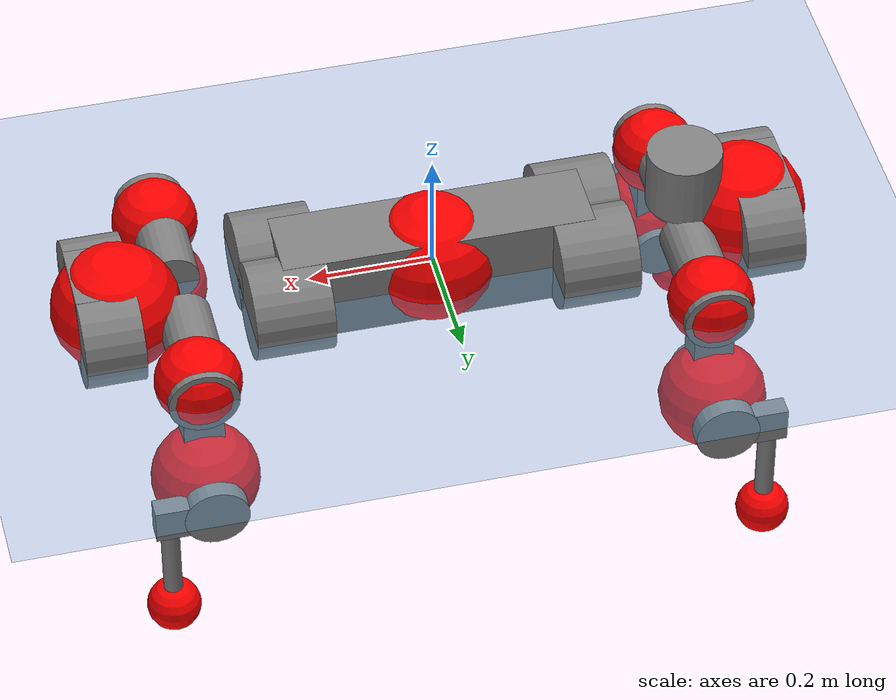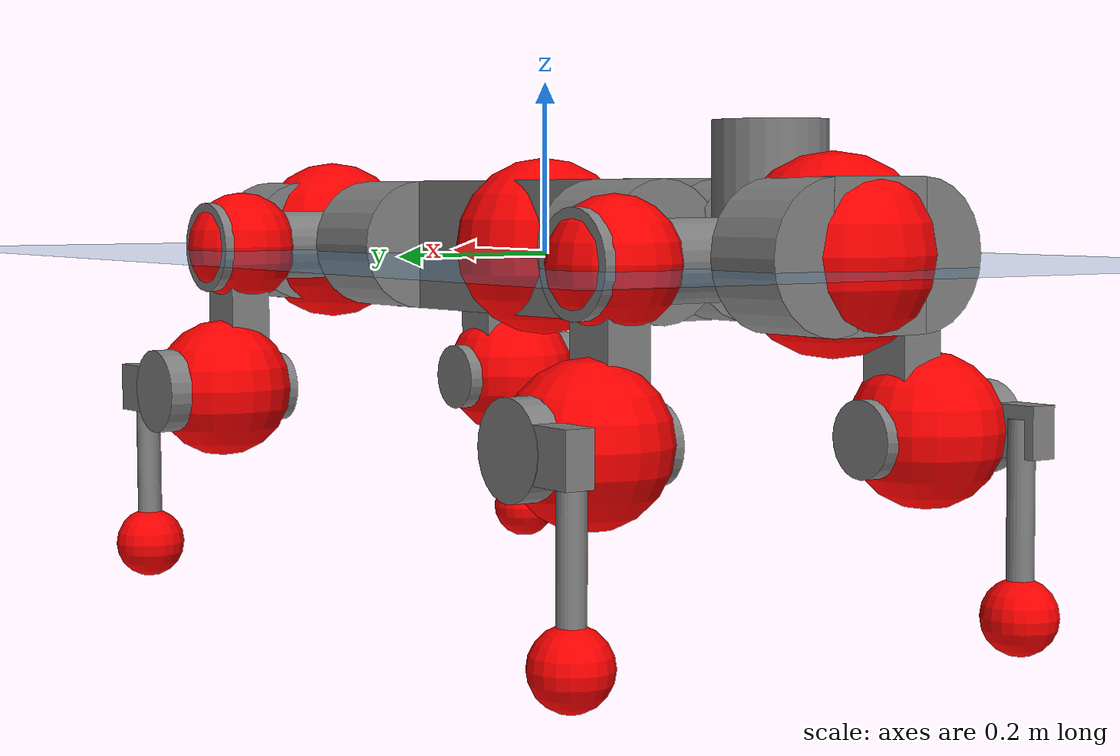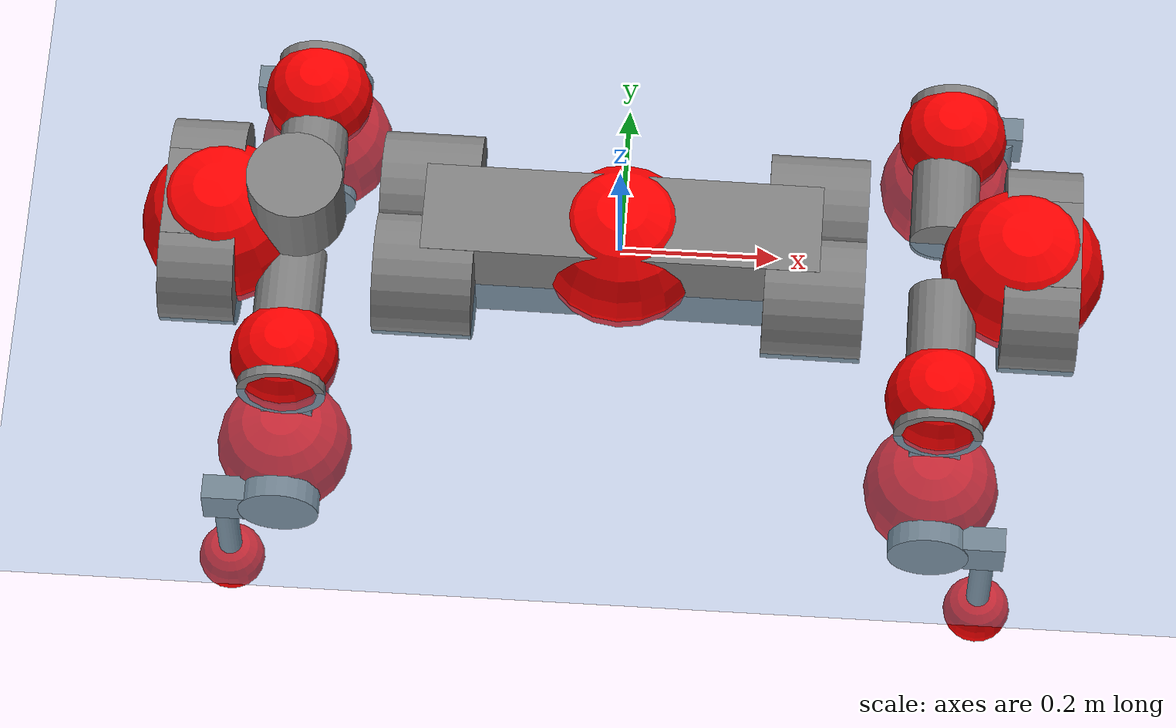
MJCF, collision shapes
<mujoco model="anymal_c">
  <compiler angle="radian" assetdir="assets" balanceinertia="true" inertiafromgeom="false"/>

  <option timestep="0.005" density="1.2" viscosity="2e-05"/>

  <size nkey="1"/>

  <visual>
    <quality shadowsize="8192"/>
    <map shadowclip="0.5"/>
  </visual>

  <default>
    <default class="/">
      <material specular="0" shininess="0.25"/>
      <geom contype="0" conaffinity="0" group="1" solref="-1000 -80"/>
      <site size="0.01 0.005 0.005" group="5"/>
      <general forcelimited="true" forcerange="-80 80" biastype="affine" gainprm="80" biasprm="0 -80 -2"/>
      <default class="anymal_c">
        <joint armature="0.01" damping="0.01" frictionloss="0.1"/>
        <default class="visual">
          <geom type="mesh" group="2"/>
          <default class="visual_zflip"/>
        </default>
        <default class="collision">
          <geom type="cylinder" group="3"/>
          <default class="foot">
            <geom size="0.03 0 0" type="sphere" condim="6" priority="1" friction="0.8 0.02 0.01" solimp="0.015 1 0.03"/>
          </default>
        </default>
      </default>
      <default class="reward_collision_sphere">
        <geom group="5" rgba="1 0 0 1"/>
      </default>
    </default>
  </default>

  <asset>
    <texture type="skybox" colorspace="auto" name="//unnamed_texture_0" builtin="gradient" rgb1="0.95 0.95 0.95" rgb2="0.95 0.95 0.95" width="100" height="600"/>
    <texture type="2d" colorspace="auto" name="texplane" builtin="checker" rgb1="0.345 0.575 0.748" rgb2="0.345 0.575 0.748" markrgb="1 1 1" width="512" height="512"/>
    <texture type="2d" colorspace="linear" name="base" file="base.png"/>
    <texture type="2d" colorspace="linear" name="top_shell" file="top_shell.png"/>
    <texture type="2d" colorspace="linear" name="bottom_shell" file="bottom_shell.png"/>
    <texture type="2d" colorspace="linear" name="remote" file="remote.png"/>
    <texture type="2d" colorspace="linear" name="hatch" file="hatch.png"/>
    <texture type="2d" colorspace="linear" name="handle" file="handle.png"/>
    <texture type="2d" colorspace="linear" name="face" file="face.png"/>
    <texture type="2d" colorspace="linear" name="battery" file="battery.png"/>
    <texture type="2d" colorspace="linear" name="lidar_cage" file="lidar_cage.png"/>
    <texture type="2d" colorspace="linear" name="depth_camera" file="depth_camera.png"/>
    <texture type="2d" colorspace="linear" name="wide_angle_camera" file="wide_angle_camera.png"/>
    <texture type="2d" colorspace="linear" name="lidar" file="lidar.png"/>
    <texture type="2d" colorspace="linear" name="drive" file="drive.png"/>
    <texture type="2d" colorspace="linear" name="hip_l" file="hip_l.png"/>
    <texture type="2d" colorspace="linear" name="shank_l" file="shank_l.png"/>
    <texture type="2d" colorspace="linear" name="foot" file="foot.png"/>
    <texture type="2d" colorspace="linear" name="thigh" file="thigh.png"/>
    <texture type="2d" colorspace="linear" name="shank_r" file="shank_r.png"/>
    <texture type="2d" colorspace="linear" name="hip_r" file="hip_r.png"/>
    <material name="MatPlane" class="/" texture="texplane" texuniform="true" texrepeat="2 2" specular="0.9" shininess="0.5"/>
    <material name="black_plastic" class="/" rgba="0.007 0.007 0.007 1"/>
    <material name="green" class="/" rgba="0.052 0.178 0.033 1"/>
    <material name="red" class="/" rgba="0.178 0.006 0.005 1"/>
    <material name="yellow" class="/" rgba="0.178 0.119 0.006 1"/>
    <material name="lwl" class="/" rgba="0.8 0.8 0.8 1"/>
    <material name="base" class="/" texture="base"/>
    <material name="top_shell" class="/" texture="top_shell"/>
    <material name="bottom_shell" class="/" texture="bottom_shell"/>
    <material name="hip_l" class="/" texture="hip_l"/>
    <material name="thigh" class="/" texture="thigh"/>
    <material name="shank_l" class="/" texture="shank_l"/>
    <material name="foot" class="/" texture="foot"/>
    <material name="hip_r" class="/" texture="hip_r"/>
    <material name="shank" class="/" texture="shank_r"/>
    <material name="hatch" class="/" texture="hatch"/>
    <material name="remote" class="/" texture="remote"/>
    <material name="handle" class="/" texture="handle"/>
    <material name="face" class="/" texture="face"/>
    <material name="depth_camera" class="/" texture="depth_camera"/>
    <material name="wide_angle_camera" class="/" texture="wide_angle_camera"/>
    <material name="battery" class="/" texture="battery"/>
    <material name="lidar_cage" class="/" texture="lidar_cage"/>
    <material name="lidar" class="/" texture="lidar"/>
    <material name="drive" class="/" texture="drive"/>
    <mesh name="base_0" class="/" file="base_0.obj"/>
    <mesh name="base_1" class="/" file="base_1.obj"/>
    <mesh name="base_2" class="/" file="base_2.obj"/>
    <mesh name="base_3" class="/" file="base_3.obj"/>
    <mesh name="base_4" class="/" file="base_4.obj"/>
    <mesh name="base_5" class="/" file="base_5.obj"/>
    <mesh name="top_shell" class="/" file="top_shell.obj"/>
    <mesh name="bottom_shell" class="/" file="bottom_shell.obj"/>
    <mesh name="remote" class="/" file="remote.obj"/>
    <mesh name="handle" class="/" file="handle.obj"/>
    <mesh name="face" class="/" file="face.obj"/>
    <mesh name="wide_angle_camera" class="/" file="wide_angle_camera.obj"/>
    <mesh name="depth_camera" class="/" file="depth_camera.obj"/>
    <mesh name="battery" class="/" file="battery.obj"/>
    <mesh name="lidar_cage" class="/" file="lidar_cage.obj"/>
    <mesh name="lidar" class="/" file="lidar.obj"/>
    <mesh name="drive" class="/" file="drive.obj"/>
    <mesh name="hip_l" class="/" file="hip_l.obj"/>
    <mesh name="thigh" class="/" file="thigh.obj"/>
    <mesh name="shank_l" class="/" file="shank_l.obj"/>
    <mesh name="foot" class="/" file="foot.obj"/>
    <mesh name="hip_r" class="/" file="hip_r.obj"/>
    <mesh name="hatch" class="/" file="hatch.obj"/>
    <mesh name="shank_r" class="/" file="shank_r.obj"/>
  </asset>

  <worldbody>
    <geom name="floor" class="/" size="100 100 0.125" type="plane" group="0" material="MatPlane"/>
    <light name="toplight_shadow" class="/" pos="0 0 5" dir="0.0990148 0.0990148 -0.990148" type="directional" ambient="0.04 0.04 0.04" diffuse="0.55 0.55 0.55" specular="0.12 0.12 0.12"/>
    <light name="toplight_fill" class="/" pos="0 0 5" dir="0.0990148 0.0990148 -0.990148" type="directional" castshadow="false" ambient="0.04 0.04 0.04" diffuse="0.3 0.3 0.3" specular="0.08 0.08 0.08"/>
    <body name="trunk" childclass="anymal_c" pos="0.00182921 0.000590217 0.00891486" quat="0.999992 -0.00159725 0.00237832 -0.00273208">
      <inertial pos="0.0043104 -0.00619431 0.0277289" quat="0.51751 0.467987 0.508517 0.504561" mass="11.5242" diaginertia="0.994061 0.20706 0.020632"/>
      <joint name="//unnamed_joint_0" type="free" armature="0" damping="0" frictionloss="0"/>
      <geom name="//unnamed_geom_1" class="visual" material="green" mesh="base_0"/>
      <geom name="//unnamed_geom_2" class="visual" material="yellow" mesh="base_1"/>
      <geom name="//unnamed_geom_3" class="visual" material="red" mesh="base_2"/>
      <geom name="//unnamed_geom_4" class="visual" material="black_plastic" mesh="base_3"/>
      <geom name="//unnamed_geom_5" class="visual" material="lwl" mesh="base_4"/>
      <geom name="//unnamed_geom_6" class="visual" material="base" mesh="base_5"/>
      <geom name="trunk_1" class="collision" size="0.250269 0.0604097 0.0776696" type="box"/>
      <geom name="trunk_2" class="collision" size="0.0776696 0.0625672" pos="0.244947 0.0577644 0" quat="0.707107 0 0.707107 0"/>
      <geom name="trunk_3" class="collision" size="0.0776696 0.0625672" pos="-0.244947 0.0577644 0" quat="0.707107 0 0.707107 0"/>
      <geom name="trunk_4" class="collision" size="0.0776696 0.0625672" pos="0.244947 -0.0577644 0" quat="0.707107 0 0.707107 0"/>
      <geom name="trunk_5" class="collision" size="0.0776696 0.0625672" pos="-0.244947 -0.0577644 0" quat="0.707107 0 0.707107 0"/>
      <geom name="//unnamed_geom_12" class="visual" material="top_shell" mesh="top_shell"/>
      <geom name="//unnamed_geom_13" class="visual" material="bottom_shell" mesh="bottom_shell"/>
      <geom name="//unnamed_geom_14" class="visual" material="remote" mesh="remote"/>
      <geom name="//unnamed_geom_15" class="visual" material="handle" mesh="handle"/>
      <geom name="//unnamed_geom_16" class="visual" pos="0.466808 0 0" quat="1 0 0 0" material="face" mesh="face"/>
      <geom name="trunk_6" class="collision" size="0.0474647 0.0604097 0.0776696" pos="0.528749 0 0" type="box"/>
      <geom name="//unnamed_geom_18" class="collision" size="0.0776696 0.0474647" pos="0.528749 0.0577644 0" quat="0.707107 0 0.707107 0"/>
      <geom name="//unnamed_geom_19" class="collision" size="0.0776696 0.0474647" pos="0.528749 -0.0577644 0" quat="0.707107 0 0.707107 0"/>
      <geom name="//unnamed_geom_20" class="visual" pos="0.519888 0 -0.014904" quat="0.965926 0 0.258819 0" material="depth_camera" mesh="depth_camera"/>
      <geom name="//unnamed_geom_21" class="visual" pos="0.577738 0 0.00954465" material="wide_angle_camera" mesh="wide_angle_camera"/>
      <geom name="//unnamed_geom_22" class="visual_zflip" pos="-0.466808 0 0" quat="0 0 0 1" material="face" mesh="face"/>
      <geom name="trunk_7" class="collision" size="0.0474647 0.0604097 0.0776696" pos="-0.528749 0 0" quat="0 0 0 1" type="box"/>
      <geom name="//unnamed_geom_24" class="collision" size="0.0776696 0.0474647" pos="-0.528749 -0.0577644 0" quat="0 -0.707107 0 0.707107"/>
      <geom name="//unnamed_geom_25" class="collision" size="0.0776696 0.0474647" pos="-0.528749 0.0577644 0" quat="0 -0.707107 0 0.707107"/>
      <geom name="//unnamed_geom_26" class="visual" pos="-0.519888 0 -0.014904" quat="0 -0.258819 0 0.965926" material="depth_camera" mesh="depth_camera"/>
      <geom name="//unnamed_geom_27" class="visual_zflip" pos="-0.577738 0 0.00954465" quat="0 0 0 1" material="wide_angle_camera" mesh="wide_angle_camera"/>
      <geom name="//unnamed_geom_28" class="visual" material="battery" mesh="battery"/>
      <geom name="//unnamed_geom_29" class="visual" pos="0 0.0591253 0.0222353" quat="0.683013 -0.183013 0.183013 0.683013" material="depth_camera" mesh="depth_camera"/>
      <geom name="//unnamed_geom_30" class="visual" pos="0 -0.0591253 0.0222353" quat="0.683013 0.183013 0.183013 -0.683013" material="depth_camera" mesh="depth_camera"/>
      <geom name="//unnamed_geom_31" class="visual" pos="-0.409935 0 0.0468625" quat="1 0 0 0" material="lidar_cage" mesh="lidar_cage"/>
      <geom name="trunk_8" class="collision" size="0.0604097 0.0517797" pos="-0.409935 0 0.0851176"/>
      <geom name="//unnamed_geom_33" class="visual" pos="-0.409935 -0.000118251 0.0906646" quat="0.707107 0 0 -0.707107" material="lidar" mesh="lidar"/>
      <geom name="//unnamed_geom_34" class="visual" pos="0.337746 0.0857547 3.23647e-09" quat="0.258819 0.965926 0 0" material="drive" mesh="drive"/>
      <geom name="//unnamed_geom_35" class="visual" pos="0.337746 -0.0857547 -3.23647e-09" quat="0.258819 -0.965926 0 0" material="drive" mesh="drive"/>
      <geom name="//unnamed_geom_36" class="visual" pos="-0.337746 0.0857547 -3.23647e-09" quat="0 0 0.965926 -0.258819" material="drive" mesh="drive"/>
      <geom name="//unnamed_geom_37" class="visual" pos="-0.337746 -0.0857547 3.23647e-09" quat="0 0 -0.965926 -0.258819" material="drive" mesh="drive"/>
      <geom name="//unnamed_geom_38" class="visual" pos="0.130639 0 0.0465437" quat="1 0 0 0" material="hatch" mesh="hatch"/>
      <geom name="//unnamed_geom_39" class="reward_collision_sphere" size="0.103559"/>
      <geom name="//unnamed_geom_40" class="reward_collision_sphere" size="0.103559" pos="0.506788 0 0"/>
      <geom name="//unnamed_geom_41" class="reward_collision_sphere" size="0.103559" pos="-0.506788 0 0"/>
      <site name="imu" pos="0.286457 -0.00906357 0.0573849" size="0.00862995"/>
      <camera name="track" pos="0 -1.65041 0" quat="0.707107 0.707107 0 0" mode="trackcom"/>
      <camera name="ego_camera" pos="0.506788 0 -0.0255034" quat="-0.5 -0.5 0.5 0.5"/>
      <body name="LF_HIP" pos="0.339024 0.0857676 -0.00217829" quat="0.258547 0.965998 0.000538526 -6.88571e-05">
        <inertial pos="0.0712078 -0.0113384 0.0032226" quat="-0.134744 0.678652 -0.14038 0.708215" mass="1.86924" diaginertia="0.010327 0.00194928 0.000360872"/>
        <joint name="LF_HAA" pos="0 0 0" axis="0.999424 0.0158213 -0.0300384" stiffness="0.0226128" range="-0.743706 0.43697" armature="0.0085171" damping="0.0320789" frictionloss="0.0751772"/>
        <geom name="//unnamed_geom_42" class="visual" pos="0 0.000190387 -3.12709e-05" quat="0.258819 -0.965926 0 0" material="hip_l" mesh="hip_l"/>
        <geom name="//unnamed_geom_43" class="visual" pos="0.0674591 -0.0777114 -0.043479" quat="0.183013 -0.683013 0.683013 0.183013" material="drive" mesh="drive"/>
        <geom name="//unnamed_geom_44" class="collision" size="0.0431498 0.0604097" pos="0.0674591 -0.00986929 -0.00440253" quat="-0.353553 -0.612372 0.612372 -0.353553"/>
        <body name="LF_THIGH" pos="0.0733969 -0.0627332 -0.0338176" quat="0.183114 -0.683336 0.682855 0.182291">
          <inertial pos="0.0352286 0.0013869 -0.158494" quat="0.993164 -0.00488308 -0.0801351 0.0847287" mass="2.16427" diaginertia="0.060306 0.0124632 0.000514104"/>
          <joint name="LF_HFE" pos="0 0 0" axis="0.999991 0.000677057 -0.00422474" stiffness="0.00917651" range="-3.08412 3.14385" armature="0.0104939" damping="0" frictionloss="0.0853618"/>
          <geom name="//unnamed_geom_45" class="visual" pos="0.00598851 9.43649e-06 0" quat="0.707107 0 0 -0.707107" material="thigh" mesh="thigh"/>
          <geom name="//unnamed_geom_46" class="collision" size="0.0560947 0.0345198" pos="0.0450478 0 0" quat="0.5 0.5 -0.5 -0.5"/>
          <geom name="//unnamed_geom_47" class="collision" size="0.0323623 0.0258899 0.121953" pos="0.0337859 0 -0.0900997" quat="0.707107 0 0 -0.707107" type="box"/>
          <geom name="//unnamed_geom_48" class="visual" pos="0.112957 0 -0.181712" quat="1 0 0 0" material="drive" mesh="drive"/>
          <geom name="//unnamed_geom_49" class="collision" size="0.0431498 0.0604097" pos="0.0341237 0 -0.181712" quat="0.707107 0 0.707107 0"/>
          <geom name="//unnamed_geom_50" class="reward_collision_sphere" size="0.0690396" pos="0.0281549 0 0"/>
          <body name="LF_SHANK" pos="0.113899 -0.00131871 -0.179242" quat="1 -6.92227e-05 -4.72098e-05 0.000122872">
            <inertial pos="0.0162093 -0.0422961 -0.0516516" quat="0.992296 -0.119036 -0.00444145 -0.0340417" mass="0.373761" diaginertia="0.0197102 0.00353914 0.000114228"/>
            <joint name="LF_KFE" pos="0 0 0" axis="0.999972 0.00709602 -0.00217153" range="-2.94401 3.07628" armature="0.00868209" damping="0.00585177" frictionloss="0.0461509"/>
            <geom name="//unnamed_geom_51" class="visual" pos="0.00195272 0.010412 0" quat="0.707107 0 0 -0.707107" material="shank_l" mesh="shank_l"/>
            <geom name="LF_kfe_act" class="collision" size="0.0517797 0.0172599" pos="0.0225239 0 0" quat="0.5 0.5 -0.5 -0.5"/>
            <geom name="//unnamed_geom_53" class="collision" size="0.0496214 0.0291261 0.0163969" pos="0.0225239 -0.0474485 0" quat="0.5 0.5 -0.5 -0.5" type="box"/>
            <geom name="//unnamed_geom_54" class="visual" pos="0.0146964 -0.0692215 -0.215485" quat="0.382683 0 0 -0.92388" material="foot" mesh="foot"/>
            <geom name="LF_calf" class="collision" size="0.0151024 0.1219" pos="0.0146968 -0.0725768 -0.107742" quat="0.707107 0 0 -0.707107"/>
            <geom name="LF_foot" class="foot" size="0.0313291" pos="0.0146968 -0.0725768 -0.201139" quat="0.707107 0 0 -0.707107"/>
            <geom name="//unnamed_geom_57" class="reward_collision_sphere" size="0.0862995" pos="-0.0563098 0 0"/>
            <geom name="//unnamed_geom_58" class="reward_collision_sphere" size="0.0431498" pos="0.0146968 -0.0725768 -0.201139"/>
            <site name="LF_foot" class="foot" pos="0.0146968 -0.0725768 -0.201139" quat="0.707107 0 0 -0.707107" size="0.00862995"/>
          </body>
        </body>
      </body>
      <body name="RF_HIP" pos="0.34075 -0.0890484 -6.29435e-05" quat="0.256608 -0.966507 -9.71021e-06 -0.00408846">
        <inertial pos="0.0649558 0.0133615 -0.00554673" quat="0.158262 0.686702 0.0898088 0.703795" mass="1.58475" diaginertia="0.0108096 0.00184797 0.000354511"/>
        <joint name="RF_HAA" pos="0 0 0" axis="0.9999 -0.0126345 0.00636381" stiffness="0.0296418" range="-0.314374 0.773039" armature="0.00885984" damping="0.0269722" frictionloss="0.0693962"/>
        <geom name="//unnamed_geom_59" class="visual" pos="0 -0.000190386 -3.12708e-05" quat="0.258819 0.965926 0 0" material="hip_r" mesh="hip_r"/>
        <geom name="//unnamed_geom_60" class="visual" pos="0.0674591 0.0777114 -0.043479" quat="0.183013 0.683013 0.683013 -0.183013" material="drive" mesh="drive"/>
        <geom name="//unnamed_geom_61" class="collision" size="0.0431498 0.0604097" pos="0.0674591 0.00986929 -0.00440253" quat="-0.353553 0.612372 0.612372 0.353553"/>
        <body name="RF_THIGH" pos="0.0693669 0.0631475 -0.0288374" quat="0.183333 0.682362 0.683514 -0.183247">
          <inertial pos="0.0367548 0.000723589 -0.156178" quat="0.992704 -0.00606536 -0.0815031 0.0886535" mass="1.85327" diaginertia="0.0564844 0.0123783 0.000435306"/>
          <joint name="RF_HFE" pos="0 0 0" axis="0.999996 0.00268658 -0.000460678" range="-3.15247 3.20079" armature="0.00939772" damping="0.0552567" frictionloss="0.110908"/>
          <geom name="//unnamed_geom_62" class="visual" pos="0.00598851 9.43649e-06 0" quat="0.707107 0 0 -0.707107" material="thigh" mesh="thigh"/>
          <geom name="//unnamed_geom_63" class="collision" size="0.0560947 0.0345198" pos="0.0450478 0 0" quat="0.5 0.5 0.5 0.5"/>
          <geom name="//unnamed_geom_64" class="collision" size="0.0323623 0.0258899 0.121953" pos="0.0337859 0 -0.0900997" quat="0.707107 0 0 0.707107" type="box"/>
          <geom name="//unnamed_geom_65" class="visual" pos="0.112957 0 -0.181712" quat="1 0 0 0" material="drive" mesh="drive"/>
          <geom name="//unnamed_geom_66" class="collision" size="0.0431498 0.0604097" pos="0.0341237 0 -0.181712" quat="0.707107 0 0.707107 0"/>
          <geom name="//unnamed_geom_67" class="reward_collision_sphere" size="0.0690396" pos="0.0281549 0 0"/>
          <body name="RF_SHANK" pos="0.121498 -0.000281235 -0.179611" quat="1 -0.000398807 0.000136232 0.000292471">
            <inertial pos="0.00577584 0.0581516 -0.0571257" quat="0.991613 0.109081 -0.0323059 0.0613217" mass="0.406529" diaginertia="0.0196755 0.00353831 0.000135376"/>
            <joint name="RF_KFE" pos="0 0 0" axis="1 0.000114065 -0.000138797" range="-3.135 3.10182" armature="0.00867021" damping="0.0292369" frictionloss="0.0956001"/>
            <geom name="//unnamed_geom_68" class="visual" pos="0.00195271 -0.010412 0" quat="0.707107 0 0 0.707107" material="shank" mesh="shank_r"/>
            <geom name="RF_kfe_act" class="collision" size="0.0517797 0.0172599" pos="0.0225239 0 0" quat="0.5 0.5 0.5 0.5"/>
            <geom name="//unnamed_geom_70" class="collision" size="0.0496214 0.0291261 0.0163969" pos="0.0225239 0.0474485 0" quat="0.5 0.5 0.5 0.5" type="box"/>
            <geom name="//unnamed_geom_71" class="visual" pos="0.0146973 0.0692215 -0.215485" quat="0.382683 0 0 0.92388" material="foot" mesh="foot"/>
            <geom name="RF_calf" class="collision" size="0.0151024 0.1219" pos="0.0146968 0.0725768 -0.107742" quat="0.707107 0 0 0.707107"/>
            <geom name="RF_foot" class="foot" size="0.0330024" pos="0.0146968 0.0725768 -0.201139" quat="0.707107 0 0 0.707107"/>
            <geom name="//unnamed_geom_74" class="reward_collision_sphere" size="0.0862995" pos="-0.0563098 0 0"/>
            <geom name="//unnamed_geom_75" class="reward_collision_sphere" size="0.0431498" pos="0.0146968 0.0725768 -0.201139"/>
            <site name="RF_foot" class="foot" pos="0.0146968 0.0725768 -0.201139" quat="0.707107 0 0 0.707107" size="0.00862995"/>
          </body>
        </body>
      </body>
      <body name="LH_HIP" pos="-0.337125 0.0901326 -0.00441424" quat="-2.07457e-05 -3.6966e-05 0.965949 -0.258733">
        <inertial pos="0.0639899 0.0200038 0.00369325" quat="0.136454 0.675957 0.131336 0.712189" mass="1.81233" diaginertia="0.0113174 0.00192902 0.000384792"/>
        <joint name="LH_HAA" pos="0 0 0" axis="0.999433 0.0168156 0.029163" stiffness="0.00697995" range="-0.352946 0.566423" armature="0.0057285" damping="0.0255267" frictionloss="0.0865811"/>
        <geom name="//unnamed_geom_76" class="visual" pos="0 -0.000190386 -3.12708e-05" quat="-0.258819 -0.965926 0 0" material="hip_r" mesh="hip_r"/>
        <geom name="//unnamed_geom_77" class="visual" pos="0.0674591 0.0777114 -0.043479" quat="0.183013 0.683013 0.683013 -0.183013" material="drive" mesh="drive"/>
        <geom name="//unnamed_geom_78" class="collision" size="0.0431498 0.0604097" pos="0.0674591 0.00986929 -0.00440253" quat="-0.353553 0.612372 0.612372 0.353553"/>
        <body name="LH_THIGH" pos="0.0664893 0.0663552 -0.0361749" quat="0.184946 0.682913 0.682995 -0.181501">
          <inertial pos="0.0250414 0.00495574 -0.147122" quat="0.992631 -0.00483226 -0.0818167 0.0892518" mass="1.681" diaginertia="0.0431003 0.0102004 0.000363774"/>
          <joint name="LH_HFE" pos="0 0 0" axis="0.998888 -0.0451219 0.0136545" range="-3.06316 3.17595" armature="0.00898215" damping="0.0553522" frictionloss="0.0788286"/>
          <geom name="//unnamed_geom_79" class="visual" pos="0.00598851 9.43649e-06 0" quat="0.707107 0 0 -0.707107" material="thigh" mesh="thigh"/>
          <geom name="//unnamed_geom_80" class="collision" size="0.0560947 0.0345198" pos="0.0450478 0 0" quat="0.5 0.5 -0.5 -0.5"/>
          <geom name="//unnamed_geom_81" class="collision" size="0.0323623 0.0258899 0.121953" pos="0.0337859 0 -0.0900997" quat="0.707107 0 0 -0.707107" type="box"/>
          <geom name="//unnamed_geom_82" class="visual" pos="0.112957 0 -0.181712" quat="1 0 0 0" material="drive" mesh="drive"/>
          <geom name="//unnamed_geom_83" class="collision" size="0.0431498 0.0604097" pos="0.0341237 0 -0.181712" quat="0.707107 0 0.707107 0"/>
          <geom name="//unnamed_geom_84" class="reward_collision_sphere" size="0.0690396" pos="0.0281549 0 0"/>
          <body name="LH_SHANK" pos="0.116238 0.000513028 -0.176883" quat="0.999996 -0.000801177 -0.00254481 -0.00091583">
            <inertial pos="0.0147231 0.0460419 -0.0422537" quat="0.990652 0.136042 -0.0087255 -0.00499006" mass="0.410318" diaginertia="0.0194025 0.00385605 0.00012262"/>
            <joint name="LH_KFE" pos="0 0 0" axis="0.999952 0.00831127 -0.00522043" range="-3.11505 3.34025" armature="0.00542888" damping="0.0513232" frictionloss="0.0861779"/>
            <geom name="//unnamed_geom_85" class="visual" pos="0.00195271 -0.010412 0" quat="-0.707107 0 0 -0.707107" material="shank" mesh="shank_r"/>
            <geom name="LH_kfe_act" class="collision" size="0.0517797 0.0172599" pos="0.0225239 0 0" quat="0.5 0.5 -0.5 -0.5"/>
            <geom name="//unnamed_geom_87" class="collision" size="0.0496214 0.0291261 0.0163969" pos="0.0225239 0.0474485 0" quat="0.5 0.5 -0.5 -0.5" type="box"/>
            <geom name="//unnamed_geom_88" class="visual" pos="0.0146973 0.0692215 -0.215485" quat="-0.382683 0 0 -0.92388" material="foot" mesh="foot"/>
            <geom name="LH_calf" class="collision" size="0.0151024 0.1219" pos="0.0146968 0.0725768 -0.107742" quat="0.707107 0 0 -0.707107"/>
            <geom name="LH_foot" class="foot" size="0.0243907" pos="0.0146968 0.0725768 -0.201139" quat="0.707107 0 0 -0.707107"/>
            <geom name="//unnamed_geom_91" class="reward_collision_sphere" size="0.0862995" pos="-0.0563098 0 0"/>
            <geom name="//unnamed_geom_92" class="reward_collision_sphere" size="0.0431498" pos="0.0146968 0.0725768 -0.201139"/>
            <site name="LH_foot" class="foot" pos="0.0146968 0.0725768 -0.201139" quat="0.707107 0 0 -0.707107" size="0.00862995"/>
          </body>
        </body>
      </body>
      <body name="RH_HIP" pos="-0.347609 -0.084074 -0.00759493" quat="-0.000182588 0.000527956 -0.96583 -0.259174">
        <inertial pos="0.0697593 -0.00924453 -0.00549829" quat="-0.133047 0.682428 -0.136594 0.705643" mass="1.78912" diaginertia="0.00845968 0.00170527 0.000298005"/>
        <joint name="RH_HAA" pos="0 0 0" axis="0.998755 -0.0166176 0.0470258" stiffness="0.00585652" range="-0.683908 0.503231" armature="0.00853878" damping="0.0137208" frictionloss="0.044147"/>
        <geom name="//unnamed_geom_93" class="visual" pos="0 0.000190387 -3.12709e-05" quat="-0.258819 0.965926 0 0" material="hip_l" mesh="hip_l"/>
        <geom name="//unnamed_geom_94" class="visual" pos="0.0674591 -0.0777114 -0.043479" quat="-0.183013 0.683013 -0.683013 -0.183013" material="drive" mesh="drive"/>
        <geom name="//unnamed_geom_95" class="collision" size="0.0431498 0.0604097" pos="0.0674591 -0.00986929 -0.00440253" quat="0.353553 0.612372 -0.612372 0.353553"/>
        <body name="RH_THIGH" pos="0.0657481 -0.0612512 -0.0218466" quat="-0.182995 0.683346 -0.682437 -0.18393">
          <inertial pos="0.0333753 0.00260891 -0.149431" quat="0.990593 -0.00535951 -0.0924978 0.1007" mass="2.21028" diaginertia="0.0502626 0.0112985 0.000445716"/>
          <joint name="RH_HFE" pos="0 0 0" axis="0.999969 -0.00156165 -0.00774443" stiffness="0.00568883" range="-3.11203 3.25049" armature="0.00907787" damping="0.00812684" frictionloss="0.0843762"/>
          <geom name="//unnamed_geom_96" class="visual" pos="0.00598851 9.43649e-06 0" quat="0.707107 0 0 -0.707107" material="thigh" mesh="thigh"/>
          <geom name="//unnamed_geom_97" class="collision" size="0.0560947 0.0345198" pos="0.0450478 0 0" quat="0.5 0.5 0.5 0.5"/>
          <geom name="//unnamed_geom_98" class="collision" size="0.0323623 0.0258899 0.121953" pos="0.0337859 0 -0.0900997" quat="0.707107 0 0 0.707107" type="box"/>
          <geom name="//unnamed_geom_99" class="visual" pos="0.112957 0 -0.181712" quat="1 0 0 0" material="drive" mesh="drive"/>
          <geom name="//unnamed_geom_100" class="collision" size="0.0431498 0.0604097" pos="0.0341237 0 -0.181712" quat="0.707107 0 0.707107 0"/>
          <geom name="//unnamed_geom_101" class="reward_collision_sphere" size="0.0690396" pos="0.0281549 0 0"/>
          <body name="RH_SHANK" pos="0.121117 -0.00534704 -0.17681" quat="0.999987 -0.00182479 0.0042586 0.00194268">
            <inertial pos="0.00598345 -0.0493336 -0.0524674" quat="0.993843 -0.106812 0.0291794 -0.00399618" mass="0.356359" diaginertia="0.017281 0.00327392 0.000124092"/>
            <joint name="RH_KFE" pos="0 0 0" axis="0.998898 0.0381354 -0.0273667" stiffness="0.0388988" range="-3.27527 3.12898" armature="0.00903374" damping="0.0425326" frictionloss="0.0848663"/>
            <geom name="//unnamed_geom_102" class="visual" pos="0.00195272 0.010412 0" quat="0.707107 0 0 -0.707107" material="shank_l" mesh="shank_l"/>
            <geom name="RH_kfe_act" class="collision" size="0.0517797 0.0172599" pos="0.0225239 0 0" quat="0.5 0.5 0.5 0.5"/>
            <geom name="//unnamed_geom_104" class="collision" size="0.0496214 0.0291261 0.0163969" pos="0.0225239 -0.0474485 0" quat="0.5 0.5 0.5 0.5" type="box"/>
            <geom name="//unnamed_geom_105" class="visual" pos="0.0146964 -0.0692215 -0.215485" quat="0.382683 0 0 -0.92388" material="foot" mesh="foot"/>
            <geom name="RH_calf" class="collision" size="0.0151024 0.1219" pos="0.0146968 -0.0725768 -0.107742" quat="0.707107 0 0 0.707107"/>
            <geom name="RH_foot" class="foot" size="0.02505" pos="0.0146968 -0.0725768 -0.201139" quat="0.707107 0 0 0.707107"/>
            <geom name="//unnamed_geom_108" class="reward_collision_sphere" size="0.0862995" pos="-0.0563098 0 0"/>
            <geom name="//unnamed_geom_109" class="reward_collision_sphere" size="0.0431498" pos="0.0146968 -0.0725768 -0.201139"/>
            <site name="RH_foot" class="foot" pos="0.0146968 -0.0725768 -0.201139" quat="0.707107 0 0 0.707107" size="0.00862995"/>
          </body>
        </body>
      </body>
    </body>
  </worldbody>

  <contact>
    <pair class="/" geom1="floor" geom2="LF_foot" name="//unnamed_contact_0"/>
    <pair class="/" geom1="floor" geom2="RF_foot" name="//unnamed_contact_1"/>
    <pair class="/" geom1="floor" geom2="LH_foot" name="//unnamed_contact_2"/>
    <pair class="/" geom1="floor" geom2="RH_foot" name="//unnamed_contact_3"/>
  </contact>

  <actuator>
    <general name="LF_HAA" class="/" joint="LF_HAA" forcerange="-67.7679 67.7679" gainprm="70.4662" biasprm="0 -70.4662 -2.09859"/>
    <general name="LF_HFE" class="/" joint="LF_HFE" forcerange="-72.9662 72.9662" gainprm="70.4662" biasprm="0 -70.4662 -2.09859"/>
    <general name="LF_KFE" class="/" joint="LF_KFE" forcerange="-61.3005 61.3005" gainprm="70.4662" biasprm="0 -70.4662 -2.09859"/>
    <general name="RF_HAA" class="/" joint="RF_HAA" forcerange="-65.3875 65.3875" gainprm="70.4662" biasprm="0 -70.4662 -2.09859"/>
    <general name="RF_HFE" class="/" joint="RF_HFE" forcerange="-62.3185 62.3185" gainprm="70.4662" biasprm="0 -70.4662 -2.09859"/>
    <general name="RF_KFE" class="/" joint="RF_KFE" forcerange="-66.6915 66.6915" gainprm="70.4662" biasprm="0 -70.4662 -2.09859"/>
    <general name="LH_HAA" class="/" joint="LH_HAA" forcerange="-67.1821 67.1821" gainprm="70.4662" biasprm="0 -70.4662 -2.09859"/>
    <general name="LH_HFE" class="/" joint="LH_HFE" forcerange="-91.8023 91.8023" gainprm="70.4662" biasprm="0 -70.4662 -2.09859"/>
    <general name="LH_KFE" class="/" joint="LH_KFE" forcerange="-49.9 49.9" gainprm="70.4662" biasprm="0 -70.4662 -2.09859"/>
    <general name="RH_HAA" class="/" joint="RH_HAA" forcerange="-70.4842 70.4842" gainprm="70.4662" biasprm="0 -70.4662 -2.09859"/>
    <general name="RH_HFE" class="/" joint="RH_HFE" forcerange="-70.7603 70.7603" gainprm="70.4662" biasprm="0 -70.4662 -2.09859"/>
    <general name="RH_KFE" class="/" joint="RH_KFE" forcerange="-60.2936 60.2936" gainprm="70.4662" biasprm="0 -70.4662 -2.09859"/>
  </actuator>

  <sensor>
    <gyro site="imu" name="imu_angular_velocity"/>
    <velocimeter site="imu" name="imu_linear_velocity"/>
    <framelinvel objtype="site" objname="LF_foot" name="LF_foot_global_linear_velocity"/>
    <framelinvel objtype="site" objname="RF_foot" name="RF_foot_global_linear_velocity"/>
    <framelinvel objtype="site" objname="LH_foot" name="LH_foot_global_linear_velocity"/>
    <framelinvel objtype="site" objname="RH_foot" name="RH_foot_global_linear_velocity"/>
  </sensor>

  <keyframe>
    <key name="home" qpos="0 0 0.55 1 0 0 0 0 0.4 -0.8 0 -0.4 0.8 0 -0.4 0.8 0 0.4 -0.8"/>
  </keyframe>
</mujoco>
